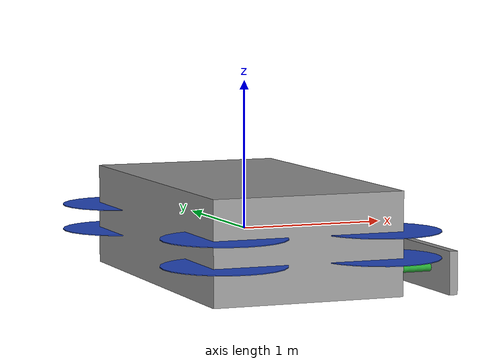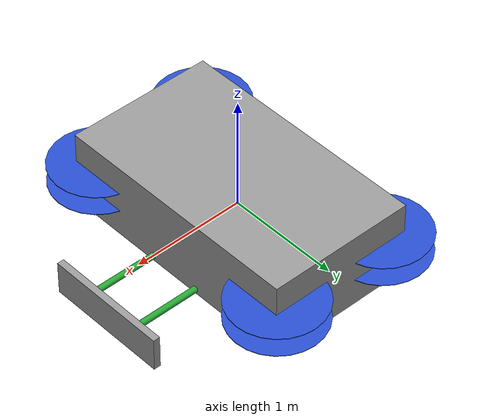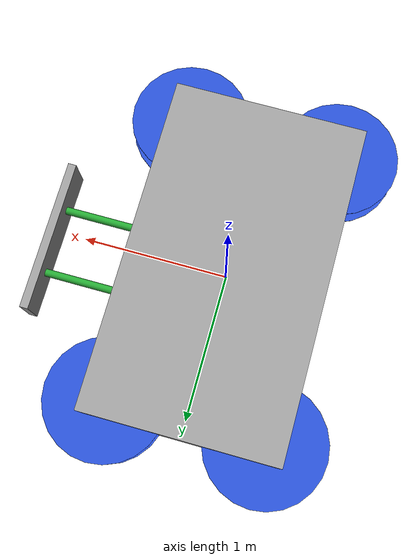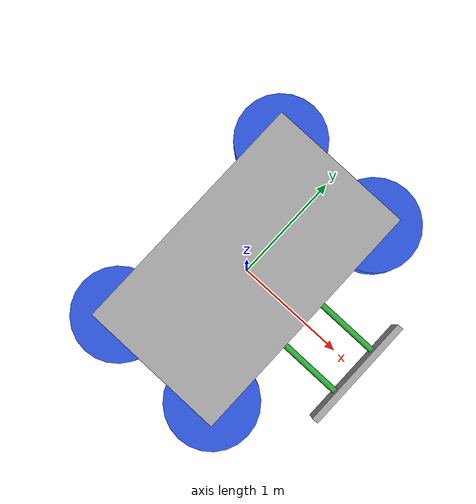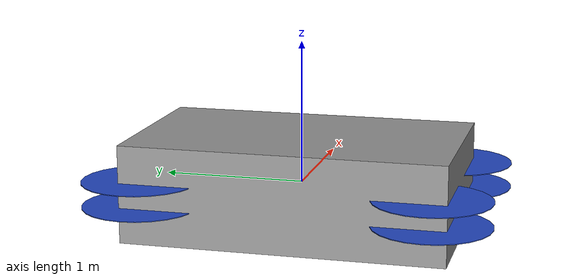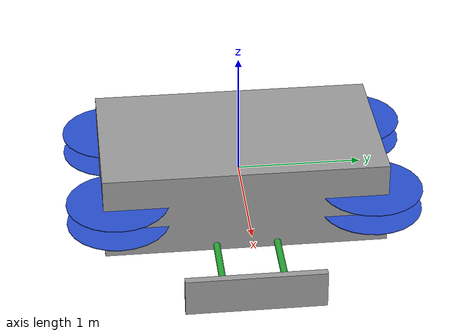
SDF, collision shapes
<?xml version="1.0" ?>

  <sdf version="1.5">
    <model name="tsduav_t4_old">

      <include>
        <uri>model://tsduav_t4_old_base</uri>
        <name>tsduav_t4_old_base</name>
        <pose>0 0 0.0 0 0 0</pose>
      </include>

      <include>
        <uri>model://tsduav_t4_old_prop</uri>
        <name>tsduav_t4_old_prop_0</name>
        <pose>0.53541 -1.00941 0.0775 0 0 0</pose>
      </include>
      <joint name="tsduav_t4_old_prop_0_joint" type="revolute">
        <parent>tsduav_t4_old_base::base</parent>
        <child>tsduav_t4_old_prop_0::prop </child>
        <axis>
          <xyz>0 0 1</xyz>
          <limit>
            <lower>-1e+16</lower>
            <upper>1e+16</upper>
          </limit>
          <dynamics>
            <damping>0.00001</damping>
          </dynamics>
          <use_parent_model_frame>1</use_parent_model_frame>
        </axis>
      </joint>
      <plugin name="tsduav_t4_old_prop_0_plugin" filename='librotors_gazebo_motor_model.so'>
        <robotNamespace></robotNamespace>
        <jointName>tsduav_t4_old_prop_0_joint </jointName>
        <linkName>tsduav_t4_old_prop_0::prop</linkName>
        <turningDirection>ccw</turningDirection>
        <timeConstantUp>0.0125</timeConstantUp>
        <timeConstantDown>0.025</timeConstantDown>
        <maxRotVelocity>1000</maxRotVelocity>
        <motorConstant>8.599e-05</motorConstant>
        <momentConstant>0.25</momentConstant>
        <commandSubTopic>/gazebo/command/prop_speed</commandSubTopic>
        <motorNumber>0</motorNumber>
        <rotorDragCoefficient>0.000806428</rotorDragCoefficient>
        <rollingMomentCoefficient>1e-06</rollingMomentCoefficient>
        <motorSpeedPubTopic>prop_speed/0</motorSpeedPubTopic>
        <rotorVelocitySlowdownSim>10</rotorVelocitySlowdownSim>
      </plugin>

      <include>
        <uri>model://tsduav_t4_old_prop</uri>
        <name>tsduav_t4_old_prop_1</name>
        <pose>0.53541 -1.00941 -0.0975 0 0 0</pose>
      </include>
      <joint name="tsduav_t4_old_prop_1_joint" type="revolute">
        <parent>tsduav_t4_old_base::base</parent>
        <child>tsduav_t4_old_prop_1::prop </child>
        <axis>
          <xyz>0 0 1</xyz>
          <limit>
            <lower>-1e+16</lower>
            <upper>1e+16</upper>
          </limit>
          <dynamics>
            <damping>0.00001</damping>
          </dynamics>
          <use_parent_model_frame>1</use_parent_model_frame>
        </axis>
      </joint>
      <plugin name="tsduav_t4_old_prop_1_plugin" filename='librotors_gazebo_motor_model.so'>
        <robotNamespace></robotNamespace>
        <jointName>tsduav_t4_old_prop_1_joint </jointName>
        <linkName>tsduav_t4_old_prop_1::prop</linkName>
        <turningDirection>cw</turningDirection>
        <timeConstantUp>0.0125</timeConstantUp>
        <timeConstantDown>0.025</timeConstantDown>
        <maxRotVelocity>1000</maxRotVelocity>
        <motorConstant>8.599e-05</motorConstant>
        <momentConstant>0.25</momentConstant>
        <commandSubTopic>/gazebo/command/prop_speed</commandSubTopic>
        <motorNumber>1</motorNumber>
        <rotorDragCoefficient>0.000806428</rotorDragCoefficient>
        <rollingMomentCoefficient>1e-06</rollingMomentCoefficient>
        <motorSpeedPubTopic>prop_speed/1</motorSpeedPubTopic>
        <rotorVelocitySlowdownSim>10</rotorVelocitySlowdownSim>
      </plugin>

      <include>
        <uri>model://tsduav_t4_old_prop</uri>
        <name>tsduav_t4_old_prop_2</name>
        <pose>-0.53541 -1.00941 0.0775 0 0 0</pose>
      </include>
      <joint name="tsduav_t4_old_prop_2_joint" type="revolute">
        <parent>tsduav_t4_old_base::base</parent>
        <child>tsduav_t4_old_prop_2::prop </child>
        <axis>
          <xyz>0 0 1</xyz>
          <limit>
            <lower>-1e+16</lower>
            <upper>1e+16</upper>
          </limit>
          <dynamics>
            <damping>0.00001</damping>
          </dynamics>
          <use_parent_model_frame>1</use_parent_model_frame>
        </axis>
      </joint>
      <plugin name="tsduav_t4_old_prop_2_plugin" filename='librotors_gazebo_motor_model.so'>
        <robotNamespace></robotNamespace>
        <jointName>tsduav_t4_old_prop_2_joint </jointName>
        <linkName>tsduav_t4_old_prop_2::prop</linkName>
        <turningDirection>cw</turningDirection>
        <timeConstantUp>0.0125</timeConstantUp>
        <timeConstantDown>0.025</timeConstantDown>
        <maxRotVelocity>1000</maxRotVelocity>
        <motorConstant>8.599e-05</motorConstant>
        <momentConstant>0.25</momentConstant>
        <commandSubTopic>/gazebo/command/prop_speed</commandSubTopic>
        <motorNumber>2</motorNumber>
        <rotorDragCoefficient>0.000806428</rotorDragCoefficient>
        <rollingMomentCoefficient>1e-06</rollingMomentCoefficient>
        <motorSpeedPubTopic>prop_speed/2</motorSpeedPubTopic>
        <rotorVelocitySlowdownSim>10</rotorVelocitySlowdownSim>
      </plugin>

      <include>
        <uri>model://tsduav_t4_old_prop</uri>
        <name>tsduav_t4_old_prop_3</name>
        <pose>-0.53541 -1.00941 -0.0975 0 0 0</pose>
      </include>
      <joint name="tsduav_t4_old_prop_3_joint" type="revolute">
        <parent>tsduav_t4_old_base::base</parent>
        <child>tsduav_t4_old_prop_3::prop </child>
        <axis>
          <xyz>0 0 1</xyz>
          <limit>
            <lower>-1e+16</lower>
            <upper>1e+16</upper>
          </limit>
          <dynamics>
            <damping>0.00001</damping>
          </dynamics>
          <use_parent_model_frame>1</use_parent_model_frame>
        </axis>
      </joint>
      <plugin name="tsduav_t4_old_prop_3_plugin" filename='librotors_gazebo_motor_model.so'>
        <robotNamespace></robotNamespace>
        <jointName>tsduav_t4_old_prop_3_joint </jointName>
        <linkName>tsduav_t4_old_prop_3::prop</linkName>
        <turningDirection>ccw</turningDirection>
        <timeConstantUp>0.0125</timeConstantUp>
        <timeConstantDown>0.025</timeConstantDown>
        <maxRotVelocity>1000</maxRotVelocity>
        <motorConstant>8.599e-05</motorConstant>
        <momentConstant>0.25</momentConstant>
        <commandSubTopic>/gazebo/command/prop_speed</commandSubTopic>
        <motorNumber>3</motorNumber>
        <rotorDragCoefficient>0.000806428</rotorDragCoefficient>
        <rollingMomentCoefficient>1e-06</rollingMomentCoefficient>
        <motorSpeedPubTopic>prop_speed/3</motorSpeedPubTopic>
        <rotorVelocitySlowdownSim>10</rotorVelocitySlowdownSim>
      </plugin>

      <include>
        <uri>model://tsduav_t4_old_prop</uri>
        <name>tsduav_t4_old_prop_4</name>
        <pose>-0.53541 1.00941 0.0775 0 0 0</pose>
      </include>
      <joint name="tsduav_t4_old_prop_4_joint" type="revolute">
        <parent>tsduav_t4_old_base::base</parent>
        <child>tsduav_t4_old_prop_4::prop </child>
        <axis>
          <xyz>0 0 1</xyz>
          <limit>
            <lower>-1e+16</lower>
            <upper>1e+16</upper>
          </limit>
          <dynamics>
            <damping>0.00001</damping>
          </dynamics>
          <use_parent_model_frame>1</use_parent_model_frame>
        </axis>
      </joint>
      <plugin name="tsduav_t4_old_prop_4_plugin" filename='librotors_gazebo_motor_model.so'>
        <robotNamespace></robotNamespace>
        <jointName>tsduav_t4_old_prop_4_joint </jointName>
        <linkName>tsduav_t4_old_prop_4::prop</linkName>
        <turningDirection>ccw</turningDirection>
        <timeConstantUp>0.0125</timeConstantUp>
        <timeConstantDown>0.025</timeConstantDown>
        <maxRotVelocity>1000</maxRotVelocity>
        <motorConstant>8.599e-05</motorConstant>
        <momentConstant>0.25</momentConstant>
        <commandSubTopic>/gazebo/command/prop_speed</commandSubTopic>
        <motorNumber>4</motorNumber>
        <rotorDragCoefficient>0.000806428</rotorDragCoefficient>
        <rollingMomentCoefficient>1e-06</rollingMomentCoefficient>
        <motorSpeedPubTopic>prop_speed/4</motorSpeedPubTopic>
        <rotorVelocitySlowdownSim>10</rotorVelocitySlowdownSim>
      </plugin>

      <include>
        <uri>model://tsduav_t4_old_prop</uri>
        <name>tsduav_t4_old_prop_5</name>
        <pose>-0.53541 1.00941 -0.0975 0 0 0</pose>
      </include>
      <joint name="tsduav_t4_old_prop_5_joint" type="revolute">
        <parent>tsduav_t4_old_base::base</parent>
        <child>tsduav_t4_old_prop_5::prop </child>
        <axis>
          <xyz>0 0 1</xyz>
          <limit>
            <lower>-1e+16</lower>
            <upper>1e+16</upper>
          </limit>
          <dynamics>
            <damping>0.00001</damping>
          </dynamics>
          <use_parent_model_frame>1</use_parent_model_frame>
        </axis>
      </joint>
      <plugin name="tsduav_t4_old_prop_5_plugin" filename='librotors_gazebo_motor_model.so'>
        <robotNamespace></robotNamespace>
        <jointName>tsduav_t4_old_prop_5_joint </jointName>
        <linkName>tsduav_t4_old_prop_5::prop</linkName>
        <turningDirection>cw</turningDirection>
        <timeConstantUp>0.0125</timeConstantUp>
        <timeConstantDown>0.025</timeConstantDown>
        <maxRotVelocity>1000</maxRotVelocity>
        <motorConstant>8.599e-05</motorConstant>
        <momentConstant>0.25</momentConstant>
        <commandSubTopic>/gazebo/command/prop_speed</commandSubTopic>
        <motorNumber>5</motorNumber>
        <rotorDragCoefficient>0.000806428</rotorDragCoefficient>
        <rollingMomentCoefficient>1e-06</rollingMomentCoefficient>
        <motorSpeedPubTopic>prop_speed/5</motorSpeedPubTopic>
        <rotorVelocitySlowdownSim>10</rotorVelocitySlowdownSim>
      </plugin>

      <include>
        <uri>model://tsduav_t4_old_prop</uri>
        <name>tsduav_t4_old_prop_6</name>
        <pose>0.53541 1.00941 0.0775 0 0 0</pose>
      </include>
      <joint name="tsduav_t4_old_prop_6_joint" type="revolute">
        <parent>tsduav_t4_old_base::base</parent>
        <child>tsduav_t4_old_prop_6::prop </child>
        <axis>
          <xyz>0 0 1</xyz>
          <limit>
            <lower>-1e+16</lower>
            <upper>1e+16</upper>
          </limit>
          <dynamics>
            <damping>0.00001</damping>
          </dynamics>
          <use_parent_model_frame>1</use_parent_model_frame>
        </axis>
      </joint>
      <plugin name="tsduav_t4_old_prop_6_plugin" filename='librotors_gazebo_motor_model.so'>
        <robotNamespace></robotNamespace>
        <jointName>tsduav_t4_old_prop_6_joint </jointName>
        <linkName>tsduav_t4_old_prop_6::prop</linkName>
        <turningDirection>cw</turningDirection>
        <timeConstantUp>0.0125</timeConstantUp>
        <timeConstantDown>0.025</timeConstantDown>
        <maxRotVelocity>1000</maxRotVelocity>
        <motorConstant>8.599e-05</motorConstant>
        <momentConstant>0.25</momentConstant>
        <commandSubTopic>/gazebo/command/prop_speed</commandSubTopic>
        <motorNumber>6</motorNumber>
        <rotorDragCoefficient>0.000806428</rotorDragCoefficient>
        <rollingMomentCoefficient>1e-06</rollingMomentCoefficient>
        <motorSpeedPubTopic>prop_speed/6</motorSpeedPubTopic>
        <rotorVelocitySlowdownSim>10</rotorVelocitySlowdownSim>
      </plugin>

      <include>
        <uri>model://tsduav_t4_old_prop</uri>
        <name>tsduav_t4_old_prop_7</name>
        <pose>0.53541 1.00941 -0.0975 0 0 0</pose>
      </include>
      <joint name="tsduav_t4_old_prop_7_joint" type="revolute">
        <parent>tsduav_t4_old_base::base</parent>
        <child>tsduav_t4_old_prop_7::prop </child>
        <axis>
          <xyz>0 0 1</xyz>
          <limit>
            <lower>-1e+16</lower>
            <upper>1e+16</upper>
          </limit>
          <dynamics>
            <damping>0.00001</damping>
          </dynamics>
          <use_parent_model_frame>1</use_parent_model_frame>
        </axis>
      </joint>
      <plugin name="tsduav_t4_old_prop_7_plugin" filename='librotors_gazebo_motor_model.so'>
        <robotNamespace></robotNamespace>
        <jointName>tsduav_t4_old_prop_7_joint </jointName>
        <linkName>tsduav_t4_old_prop_7::prop</linkName>
        <turningDirection>ccw</turningDirection>
        <timeConstantUp>0.0125</timeConstantUp>
        <timeConstantDown>0.025</timeConstantDown>
        <maxRotVelocity>1000</maxRotVelocity>
        <motorConstant>8.599e-05</motorConstant>
        <momentConstant>0.25</momentConstant>
        <commandSubTopic>/gazebo/command/prop_speed</commandSubTopic>
        <motorNumber>7</motorNumber>
        <rotorDragCoefficient>0.000806428</rotorDragCoefficient>
        <rollingMomentCoefficient>1e-06</rollingMomentCoefficient>
        <motorSpeedPubTopic>prop_speed/7</motorSpeedPubTopic>
        <rotorVelocitySlowdownSim>10</rotorVelocitySlowdownSim>
      </plugin>

    <include>
      <uri>model://tsduav_t4_old_link</uri>
      <name>tsduav_t4_old_link</name>
      <pose>0 0 -0.1045 0 0 0</pose>
    </include>
    <joint name='link_base_joint' type='fixed'>
      <child>tsduav_t4_old_base::base</child>
      <parent>tsduav_t4_old_link::link_base</parent>
    </joint>

    <include>
      <uri>model://tsduav_t4_old_saw</uri>
      <name>tsduav_t4_old_saw</name>
      <pose>1.307 0 -0.3055 0 -1.5707963267948966  0</pose>
    </include>
    <joint name='tsduav_t4_old_saw_1_joint' type='fixed'>
      <child>tsduav_t4_old_saw::saw</child>
      <parent>tsduav_t4_old_link::link_pipe_1</parent>
    </joint>
    <joint name='tsduav_t4_old_saw_2_joint' type='fixed'>
      <child>tsduav_t4_old_saw::saw</child>
      <parent>tsduav_t4_old_link::link_pipe_2</parent>
    </joint>
    <plugin name="ArduRotorQuadOctPlugin" filename="libArduRotorQuadOctPlugin.so">
      <fdm_addr>127.0.0.1</fdm_addr>
      <fdm_port_in>9002</fdm_port_in>
      <fdm_port_out>9003</fdm_port_out>
      <modelXYZToAirplaneXForwardZDown>0 0 0 3.141593 0 0</modelXYZToAirplaneXForwardZDown>
      <gazeboXYZToNED>0 0 0 3.141593 0 0</gazeboXYZToNED>
      <motor_num>8</motor_num>
      <motor_pub>/gazebo/command/prop_speed</motor_pub>
      <imuName>tsduav_t4_old::tsduav_t4_old_base::imu_link::imu_sensor</imuName>
      <connectionTimeoutMaxCount>5</connectionTimeoutMaxCount>
    </plugin>
  </model>
</sdf>

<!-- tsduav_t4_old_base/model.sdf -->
<sdf version="1.5">
    <model name="tsduav_t4_old_base">

      <link name="base">
      <pose>0 0 0 0 0 0</pose>
      <inertial>
        <pose>0 0 0 0 0 0</pose>
        <mass>10.5</mass>
        <inertia>
          <ixx>5.4</ixx>
          <iyy>4.0</iyy>
          <izz>3.7</izz>
          <ixy>0</ixy>
          <ixz>0</ixz>
          <iyz>0</iyz>
        </inertia>
      </inertial>
      <collision name="platform_base_collision">
        <pose>0 0 0  0 0 0</pose>
        <geometry>
          <box>
            <size>1.311 2.259 0.688</size>
          </box>
        </geometry>
        <surface>
          <contact>
            <ode>
              <max_vel>100.0</max_vel>
              <min_depth>0.001</min_depth>
            </ode>
          </contact>
          <friction>
            <ode>
              <mu>100000.0</mu>
              <mu2>100000.0</mu2>
            </ode>
          </friction>
        </surface>
      </collision>
      <visual name="platform_base_visual">
        <geometry>+
          <mesh>
            <uri>model://tsduav_t4_old_base/meshes/base.STL</uri>
          </mesh>
        </geometry>
        <material>
          <script>
            <name>Gazebo/Gray</name>
          </script>
        </material>
      </visual>
    </link>

    <link name='imu_link'>
    <inertial>
      <pose>0 0 0 0 0 0</pose>
      <mass>0.15</mass>
      <inertia>
        <ixx>0.00001</ixx>
        <ixy>0</ixy>
        <ixz>0</ixz>
        <iyy>0.00002</iyy>
        <iyz>0</iyz>
        <izz>0.00002</izz>
      </inertia>
    </inertial>
    <sensor name="imu_sensor" type="imu">
      <pose>0 0 0 3.141593 0 0</pose>
      <always_on>1</always_on>
      <update_rate>1000.0</update_rate>
      <topic>__default_topic__</topic>
    </sensor>
  </link>
  <joint name='imu_joint' type='revolute'>
    <child>imu_link</child>
    <parent>base</parent>
    <axis>
      <xyz>0 0 1</xyz>
      <limit>
        <lower>-0.0001</lower>
        <upper>0.00001</upper>
        <effort>0</effort>
        <velocity>0</velocity>
      </limit>
      <dynamics>
        <damping>1.0</damping>
      </dynamics>
      <use_parent_model_frame>1</use_parent_model_frame>
    </axis>
    <physics>
      <ode>
        <implicit_spring_damper>1</implicit_spring_damper>
      </ode>
    </physics>
  </joint>

</model>
</sdf>

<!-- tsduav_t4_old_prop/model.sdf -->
<sdf version="1.5">
    <model name="tsduav_t4_old_prop">

      <link name="prop">
      <pose>0 0 0 0 0 0</pose>
      <inertial>
        <pose>0 0 0 0 0 0</pose>
        <mass>0.025</mass>
        <inertia>
          <ixx>9.75e-06</ixx>
          <ixy>0</ixy>
          <ixz>0</ixz>
          <iyy>0.000166704</iyy>
          <iyz>0</iyz>
          <izz>0.000167604</izz>
        </inertia>
      </inertial>
      <collision name="prop_collision">
        <pose>0 0 0 0 -0 0</pose>
        <geometry>
          <cylinder>
            <length>0.005</length>
            <radius>0.41</radius>
          </cylinder>
        </geometry>
        <surface>
          <contact>
            <ode />
          </contact>
          <friction>
            <ode />
          </friction>
        </surface>
      </collision>
      <visual name="prop_visual">
        <geometry>+
          <mesh>
            <uri>model://tsduav_t4_old_prop/meshes/prop.STL</uri>
          </mesh>
        </geometry>
        <material>
          <script>
            <name>Gazebo/Blue</name>
          </script>
        </material>
      </visual>
      <gravity>1</gravity>
      <velocity_decay />
      <self_collide>0</self_collide>
    </link>

  </model>
</sdf>

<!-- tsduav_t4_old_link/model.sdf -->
<sdf version="1.5">
    <model name="tsduav_t4_old_link">

      <link name="link_base">
      <pose>0 0 0 0 0 0</pose>
      <inertial>
        <pose>0 0 0 0 0 0</pose>
        <mass>0.2</mass>
        <inertia>
          <ixx>0.01</ixx>
          <iyy>0.01</iyy>
          <izz>0.01</izz>
          <ixy>0</ixy>
          <ixz>0</ixz>
          <iyz>0</iyz>
        </inertia>
      </inertial>
      <collision name="link_base_collision">
        <pose>0 0 0 0 0 0</pose>
        <geometry>
          <box>
            <size>0.1 0.655  0.255</size>
          </box>
        </geometry>
        <surface>
          <contact>
            <ode>
              <max_vel>100.0</max_vel>
              <min_depth>0.001</min_depth>
            </ode>
          </contact>
          <friction>
            <ode>
              <mu>100000.0</mu>
              <mu2>100000.0</mu2>
            </ode>
          </friction>
        </surface>
      </collision>
      <visual name="link_base_visual">
        <geometry>
          <mesh>
            <uri>model://tsduav_t4_old_link/meshes/link_base.STL</uri>
          </mesh>
        </geometry>
        <material>
          <script>
            <name>Gazebo/Yellow</name>
          </script>
        </material>
      </visual>
    </link>
    <link name="link_pipe_1">
    <pose>-0.0 0.243 -0.1995 0 -1.5707963267948966 0</pose>
    <inertial>
      <pose>0 0 0 0 0 0</pose>
      <mass>0.5</mass>
      <inertia>
        <ixx>0.02</ixx>
        <iyy>0.03</iyy>
        <izz>0.01</izz>
        <ixy>0</ixy>
        <ixz>0</ixz>
        <iyz>0</iyz>
      </inertia>
    </inertial>
    <collision name="link_pipe_1_collision">
      <pose>0 0 -0.65 0 0 0</pose>
      <geometry>
        <cylinder>
          <length>1.35</length>
          <radius>0.0275</radius>
        </cylinder>
      </geometry>
      <surface>
        <contact>
          <ode>
            <max_vel>100.0</max_vel>
            <min_depth>0.001</min_depth>
          </ode>
        </contact>
        <friction>
          <ode>
            <mu>100000.0</mu>
            <mu2>100000.0</mu2>
          </ode>
        </friction>
      </surface>
    </collision>
    <visual name="link_pipe_1_visual">
      <geometry>
        <mesh>
          <uri>model://tsduav_t4_old_link/meshes/link_pipe.STL</uri>
        </mesh>
      </geometry>
      <material>
        <script>
          <name>Gazebo/Green</name>
        </script>
      </material>
    </visual>
  </link>
  <joint name='link_pipe_1_joint' type="revolute">
    <parent>link_base</parent>
    <child>link_pipe_1</child>
    <axis>
      <xyz>0 1 0</xyz>
      <limit>
        <lower>-1.5707963267948966</lower>
        <upper>1.5707963267948966</upper>
      </limit>
      <dynamics>
        <damping>0.00001</damping>
      </dynamics>
      <use_parent_model_frame>1</use_parent_model_frame>
    </axis>
  </joint>

  <link name="link_pipe_2">
  <pose>-0.0 -0.243 -0.1995 0 -1.5707963267948966 0</pose>
  <inertial>
    <pose>0 0 0 0 0 0</pose>
    <mass>0.5</mass>
    <inertia>
      <ixx>0.02</ixx>
      <iyy>0.03</iyy>
      <izz>0.01</izz>
      <ixy>0</ixy>
      <ixz>0</ixz>
      <iyz>0</iyz>
    </inertia>
  </inertial>
  <collision name="link_pipe_2_collision">
    <pose>0 0 -0.65 0 0 0</pose>
    <geometry>
      <cylinder>
        <length>1.35</length>
        <radius>0.0275</radius>
      </cylinder>
    </geometry>
    <surface>
      <contact>
        <ode>
          <max_vel>100.0</max_vel>
          <min_depth>0.001</min_depth>
        </ode>
      </contact>
      <friction>
        <ode>
          <mu>100000.0</mu>
          <mu2>100000.0</mu2>
        </ode>
      </friction>
    </surface>
  </collision>
  <visual name="link_pipe_2_visual">
    <geometry>
      <mesh>
        <uri>model://tsduav_t4_old_link/meshes/link_pipe.STL</uri>
      </mesh>
    </geometry>
    <material>
      <script>
        <name>Gazebo/Green</name>
      </script>
    </material>
  </visual>
</link>
<joint name='link_pipe_2_joint' type="revolute">
  <parent>link_base</parent>
  <child>link_pipe_2</child>
  <axis>
    <xyz>0 1 0</xyz>
    <limit>
      <lower>-1.5707963267948966</lower>
      <upper>1.5707963267948966</upper>
    </limit>
    <dynamics>
      <damping>0.00001</damping>
    </dynamics>
    <use_parent_model_frame>1</use_parent_model_frame>
  </axis>
</joint>
</model>
</sdf>

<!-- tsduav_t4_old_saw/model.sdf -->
<sdf version="1.5">
    <model name="tsduav_t4_old_saw">

      <link name="saw">
      <pose>0 0 -0.0  0 0 0</pose>
      <inertial>
        <pose>0 0 0 0 0 0</pose>
        <mass>5.5</mass>
        <inertia>
          <ixx>0.5</ixx>
          <iyy>0.2</iyy>
          <izz>0.3</izz>
          <ixy>0</ixy>
          <ixz>0</ixz>
          <iyz>0</iyz>
        </inertia>
      </inertial>
      <collision name="saw_collision">
        <pose>0 0 0  0 0 0</pose>
        <geometry>
          <box>
            <size>0.3 1.1 0.06</size>
          </box>
        </geometry>
        <surface>
          <contact>
            <ode>
              <max_vel>100.0</max_vel>
              <min_depth>0.001</min_depth>
            </ode>
          </contact>
          <friction>
            <ode>
              <mu>100000.0</mu>
              <mu2>100000.0</mu2>
            </ode>
          </friction>
        </surface>
      </collision>
      <visual name="saw_visual">
        <geometry>
          <mesh>
            <uri>model://tsduav_t4_old_saw/meshes/saw.STL</uri>
          </mesh>
        </geometry>
        <material>
          <script>
            <name>Gazebo/Gray</name>
          </script>
        </material>
      </visual>
    </link>
  </model>
</sdf>
